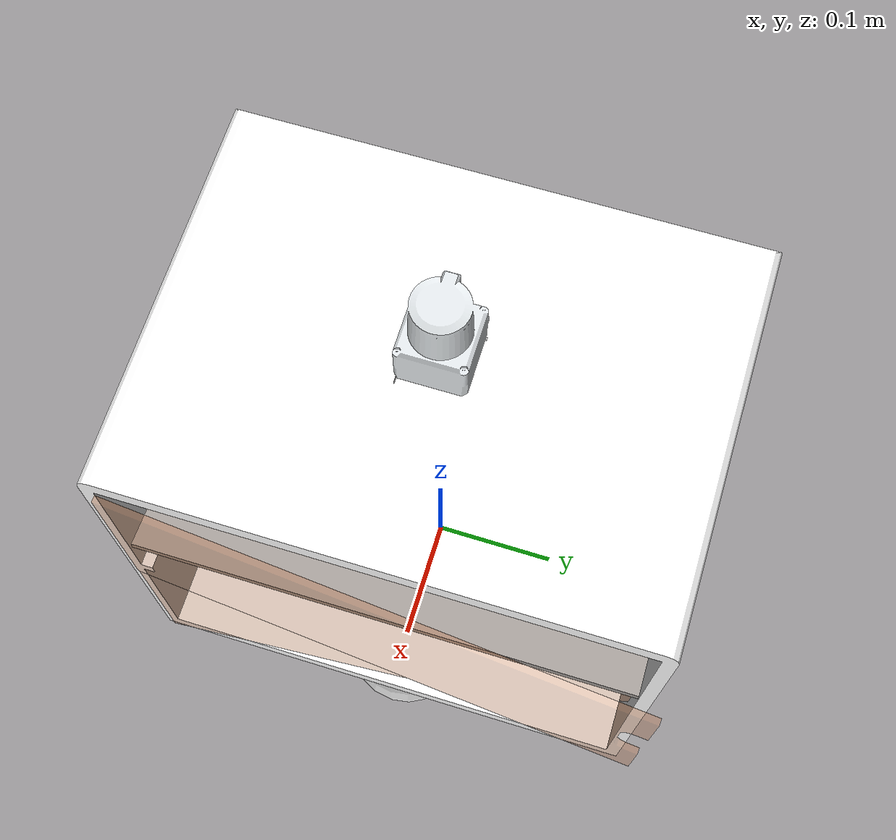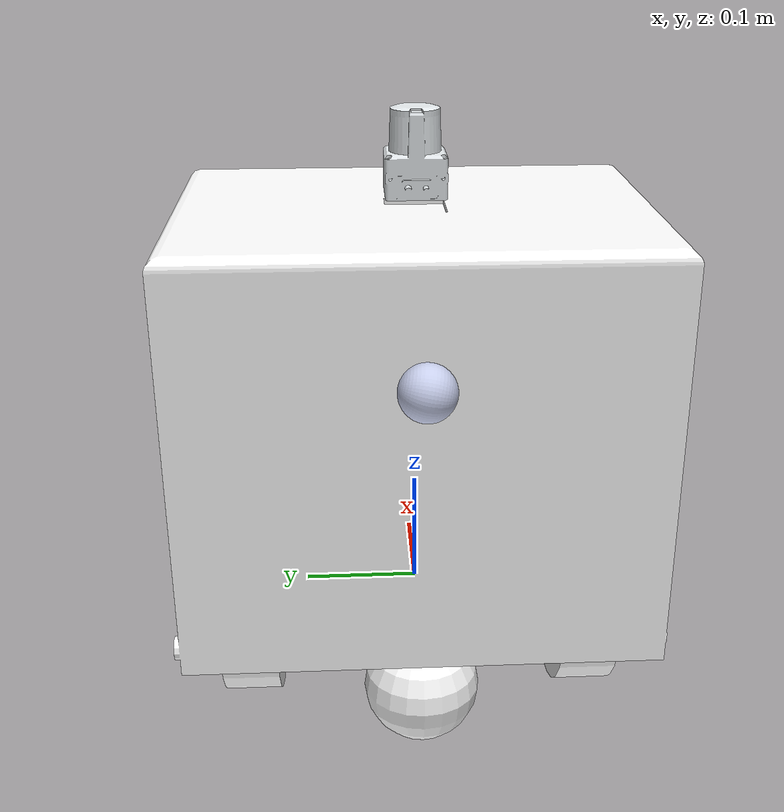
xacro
<?xml version='1.0'?>

<robot name="delirobot"
    xmlns:xacro="http://www.ros.org/wiki/xacro">

    <xacro:include filename="$(find delirobot_description)/urdf/delirobot.gazebo" />

    <link name="base_link"></link>

    <joint name="base_link_joint" type="fixed">
        <origin xyz="0 0 0" rpy="0 0 0" />
        <parent link="base_link"/>
        <child link="chassis" />
    </joint>

    <link name='chassis'>
        <pose>0 0 0.1 0 0 0</pose>

        <inertial>
            <mass value="15.0"/>
            <origin xyz="0.0 0 0" rpy=" 0 0 0"/>
            <inertia ixx="0.1" ixy="0" ixz="0" iyy="0.1" iyz="0" izz="0.1" />
        </inertial>

        <collision name='collision'>
            <origin xyz="0 0 0" rpy=" 0 0 0"/>
            <geometry>
                <box size=".1 .1 .1"/>
            </geometry>
        </collision>

        <collision name='back_caster_collision'>
            <origin xyz="-0.1 0 -0.05" rpy=" 0 0 0"/>
            <geometry>
                <sphere radius="0.0499"/>
            </geometry>
        </collision>

        <visual name='back_caster_visual'>
            <origin xyz="-0.1 0 -0.05" rpy=" 0 0 0"/>
            <geometry>
                <sphere radius="0.05"/>
            </geometry>
            <material name="">
                <color rgba="1 1 1 1" />
            </material>
        </visual>

        <collision name='front_caster_collision'>
            <origin xyz="0.1 0 -0.05" rpy=" 0 0 0"/>
            <geometry>
                <sphere radius="0.0499"/>
            </geometry>
        </collision>

        <visual name='front_caster_visual'>
            <origin xyz="0.1 0 -0.05" rpy=" 0 0 0"/>
            <geometry>
                <sphere radius="0.05"/>
            </geometry>
            <material name="">
                <color rgba="1 1 1 1" />
            </material>
        </visual>
    </link>

    <link name='left_wheel'>
        <collision>
            <origin xyz="0 0 0" rpy="0 1.5707 1.5707"/>
            <geometry>
                <cylinder radius="0.1" length="0.05"/>
            </geometry>
        </collision>
        <visual>
            <origin xyz="0 0 0" rpy="0 1.5707 1.5707"/>
            <geometry>
                <cylinder radius="0.1" length="0.05"/>
            </geometry>
            <material name="">
                <color rgba="1 1 1 1" />
            </material>
        </visual>
        <inertial>
            <mass value="5"/>
            <origin xyz="0 0 0" rpy="0 1.5707 1.5707"/>
            <inertia ixx="0.1" ixy="0" ixz="0" iyy="0.1" iyz="0" izz="0.1" />
        </inertial>
    </link>

    <link name='right_wheel'>
        <collision>
            <origin xyz="0 0 0" rpy="0 1.5707 1.5707"/>
            <geometry>
                <cylinder radius="0.1" length="0.05"/>
            </geometry>
        </collision>
        <visual>
            <origin xyz="0 0 0" rpy="0 1.5707 1.5707"/>
            <geometry>
                <cylinder radius="0.1" length="0.05"/>
            </geometry>
            <material name="">
                <color rgba="1 1 1 1" />
            </material>
        </visual>
        <inertial>
            <mass value="5"/>
            <origin xyz="0 0 0" rpy="0 1.5707 1.5707"/>
            <inertia ixx="0.1" ixy="0" ixz="0" iyy="0.1" iyz="0" izz="0.1" />
        </inertial>
    </link>

    <joint type="continuous" name="left_wheel_hinge">
        <origin xyz="0 0.15 0" rpy="0 0 0"/>
        <child link="left_wheel"/>
        <parent link="chassis"/>
        <axis xyz="0 1 0" rpy="0 0 0"/>
        <limit effort="10000" velocity="1000"/>
        <dynamics damping="1.0" friction="1.0"/>
    </joint>

    <joint type="continuous" name="right_wheel_hinge">
        <origin xyz="0 -0.15 0" rpy="0 0 0"/>
        <child link="right_wheel"/>
        <parent link="chassis"/>
        <axis xyz="0 1 0" rpy="0 0 0"/>
        <limit effort="10000" velocity="1000"/>
        <dynamics damping="1.0" friction="1.0"/>
    </joint>
    <!-- ============================================ base ============================================ -->

    <link name="body">
        <inertial>
            <origin xyz="0 0 0" rpy="0 0 0" />
            <mass value="15" />
            <inertia ixx="1" ixy="0" ixz="0" iyy="1" iyz="0" izz="1" />
        </inertial>
        <visual>
            <origin xyz="0 0 0" rpy="0 0 0" />
            <geometry>
                <mesh filename="package://delirobot_description/meshes/base_link.STL" />
            </geometry>
            <material name="">
                <color rgba="1 1 1 1" />
            </material>
        </visual>
        <collision>
            <origin xyz="0 0 0" rpy="0 0 0" />
            <geometry>
                <mesh filename="package://delirobot_description/meshes/base_link.STL" />
            </geometry>
        </collision>
    </link>
    <joint name="body_link" type="fixed">
        <origin xyz="0 0 0" rpy="0 0 0" />
        <parent link="base_link" />
        <child link="body" />
        <axis xyz="0 0 0" />
    </joint>
    <!-- ============================================ upperglass ============================================ -->
    <link name="upperglass">
        <inertial>
            <origin xyz="0 0 0" rpy="0 0 0" />
            <mass value="1e-5" />
            <inertia ixx="0.01" ixy="0" ixz="0" iyy="0.01" iyz="0" izz="0.01" />
        </inertial>
        <visual>
            <origin xyz="0 0 0" rpy="0 0 0" />
            <geometry>
                <mesh filename="package://delirobot_description/meshes/upperglass.STL" />
            </geometry>
            <material name="">
                <color rgba="0.76078431372549 0.4 0.180392156862745 0.3" />
            </material>
        </visual>
        <collision>
            <origin xyz="0 0 0" rpy="0 0 0" />
            <geometry>
                <mesh filename="package://delirobot_description/meshes/upperglass.STL" />
            </geometry>
        </collision>
    </link>
    <joint name="upperglass_joint" type="revolute">
        <origin xyz="0.15 -0.19 0.18" rpy="0 0 0" />
        <parent link="body" />
        <child link="upperglass" />
        <axis xyz="0 0 1" />
        <limit lower="0" upper="0" effort="0" velocity="0" />
    </joint>
    <!-- ============================================ lowerglass ============================================ -->
    <link name="lowerglass">
        <inertial>
            <origin xyz="0 0 0" rpy="0 0 0" />
            <mass value="1e-5" />
            <inertia ixx="0.01" ixy="0" ixz="0" iyy="0.01" iyz="0" izz="0.01" />
        </inertial>
        <visual>
            <origin xyz="0 0 0" rpy="0 0 0" />
            <geometry>
                <mesh filename="package://delirobot_description/meshes/lowerglass.STL" />
            </geometry>
            <material name="">
                <color rgba="0.76078431372549 0.4 0.180392156862745 0.3" />
            </material>
        </visual>
        <collision>
            <origin xyz="0 0 0" rpy="0 0 0" />
            <geometry>
                <mesh filename="package://delirobot_description/meshes/lowerglass.STL" />
            </geometry>
        </collision>
    </link>
    <joint name="lowerglass_joint" type="revolute">
        <origin xyz="0.15 -0.19 0.02" rpy="0 0 0" />
        <parent link="body" />
        <child link="lowerglass" />
        <axis xyz="0 0 1" />
        <limit lower="0" upper="0" effort="0" velocity="0" />
    </joint>
    <!-- ============================================ FRwheel ============================================ -->
    <!-- ============================================ bulb ============================================ -->
    <link name="bulb">
        <inertial>
            <origin xyz="0 0 0" rpy="0 0 0" />
            <mass value="0.006" />
            <inertia ixx="0.01" ixy="0" ixz="0" iyy="0.01" iyz="0" izz="0.01" />
        </inertial>
        <visual>
            <origin xyz="0 0 0" rpy="0 0 0" />
            <geometry>
                <mesh filename="package://delirobot_description/meshes/bulb.STL" />
            </geometry>
            <material name="">
                <color rgba="0.792156862745098 0.819607843137255 0.933333333333333 1" />
            </material>
        </visual>
        <collision>
            <origin xyz="0 0 0" rpy="0 0 0" />
            <geometry>
                <mesh filename="package://delirobot_description/meshes/bulb.STL" />
            </geometry>
        </collision>

        <light name='lamp' type='spot'>
        </light>
        <plugin name='light_control' filename='libLedPlugin.so'>
            <light>
                <light>/lamp</light>
                <duration>0.5</duration>
                <interval>0.5</interval>
            </light>
        </plugin>

    </link>
    <joint name="bulb_joint" type="fixed">
        <origin xyz="-0.19137 0 0.25319" rpy="0 0 0" />
        <parent link="base_link" />
        <child link="bulb" />
        <axis xyz="0 0 0" />
    </joint>
    <!-- ============================================ plate ============================================ -->
    <link name="plate">
        <inertial>
            <origin xyz="0 0 0" rpy="0 0 0" />
            <mass value="0.51" />
            <inertia ixx="0.01" ixy="0" ixz="0" iyy="0.01" iyz="0" izz="0.01" />
        </inertial>
        <visual>
            <origin xyz="0 0 0" rpy="0 0 0" />
            <geometry>
                <mesh filename="package://delirobot_description/meshes/plate.STL" />
            </geometry>
            <material name="">
                <color rgba="0.647058823529412 0.619607843137255 0.6 1" />
            </material>
        </visual>
        <collision>
            <origin xyz="0 0 0" rpy="0 0 0" />
            <geometry>
                <mesh filename="package://delirobot_description/meshes/plate.STL" />
            </geometry>
        </collision>
    </link>
    <joint name="plate_joint" type="revolute">
        <origin xyz="-0.12 -0.15602 0.175" rpy="0 0 0" />
        <parent link="body" />
        <child link="plate" />
        <axis xyz="0 1 0" />
        <limit lower="0" upper="0" effort="0" velocity="0" />
    </joint>
    <!-- ============================================ lidar ============================================ -->
    <link name="hokuyo">
        <inertial>
            <mass value="1e-5"/>
            <origin xyz="0 0 0" rpy="0 0 0"/>
            <inertia ixx="0.01" ixy="0" ixz="0" iyy="0.01" iyz="0" izz="0.01" />
        </inertial>
        <visual>
            <origin xyz="0 0 0" rpy="0 0 0" />
            <geometry>
                <mesh filename="package://delirobot_description/meshes/lidar.STL" />
            </geometry>
            <material name="">
                <color rgba="0.898039215686275 0.917647058823529 0.929411764705882 1" />
            </material>
        </visual>
        <collision>
            <origin xyz="0 0 0" rpy="0 0 0" />
            <geometry>
                <mesh filename="package://delirobot_description/meshes/lidar.STL" />
            </geometry>
        </collision>
    </link>
    <joint name="lidar_joint" type="fixed">
        <origin xyz="0 0 0.36" rpy="0 0 0" />
        <parent link="body" />
        <child link="hokuyo" />
        <axis xyz="0 0 0" />
    </joint>

    <gazebo reference="hokuyo">
        <material>Gazebo/Gold</material>
    </gazebo>
</robot>
